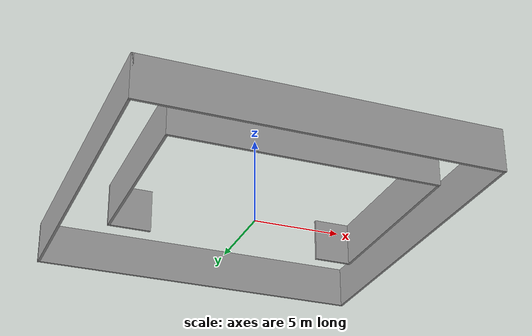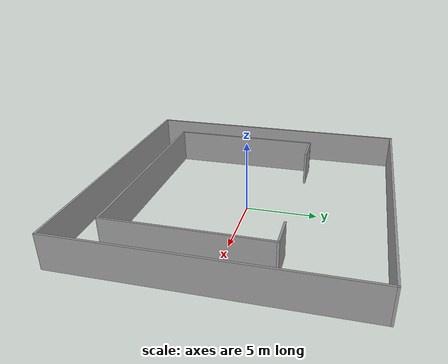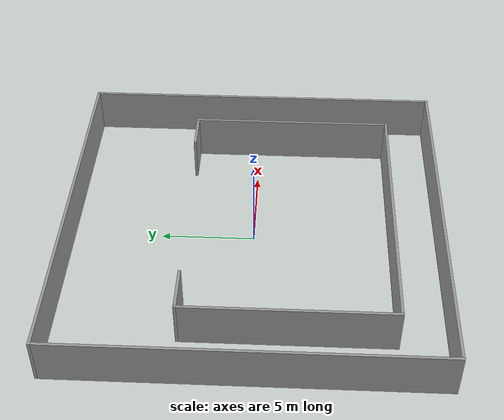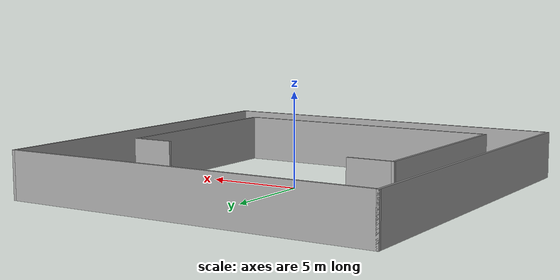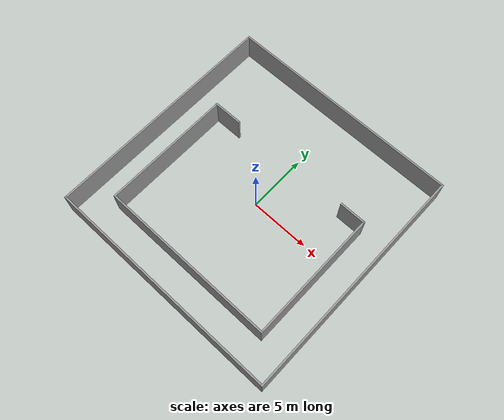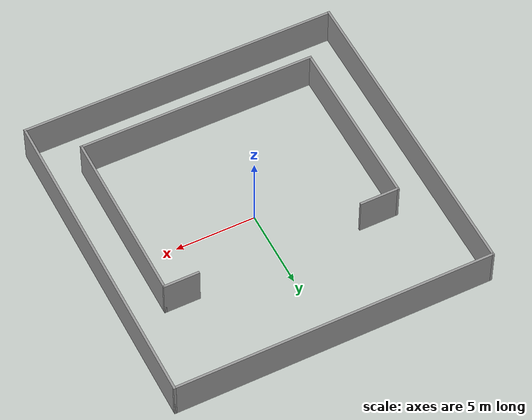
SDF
<?xml version='1.0'?>
<sdf version='1.6'>
  <model name='final'>
    <pose frame=''>-0.068 -0.029 0 0 -0 0</pose>
    <link name='Wall_13'>
      <collision name='Wall_13_Collision'>
        <geometry>
          <box>
            <size>20 0.15 2.5</size>
          </box>
        </geometry>
        <pose frame=''>0 0 1.25 0 -0 0</pose>
      </collision>
      <visual name='Wall_13_Visual'>
        <pose frame=''>0 0 1.25 0 -0 0</pose>
        <geometry>
          <box>
            <size>20 0.15 2.5</size>
          </box>
        </geometry>
        <material>
          <script>
            <uri>file://media/materials/scripts/gazebo.material</uri>
            <name>Gazebo/Grey</name>
          </script>
          <ambient>1 1 1 1</ambient>
        </material>
        <meta>
          <layer>0</layer>
        </meta>
      </visual>
      <pose frame=''>-9.925 0 0 0 -0 -1.5708</pose>
    </link>
    <link name='Wall_16'>
      <collision name='Wall_16_Collision'>
        <geometry>
          <box>
            <size>20 0.15 2.5</size>
          </box>
        </geometry>
        <pose frame=''>0 0 1.25 0 -0 0</pose>
      </collision>
      <visual name='Wall_16_Visual'>
        <pose frame=''>0 0 1.25 0 -0 0</pose>
        <geometry>
          <box>
            <size>20 0.15 2.5</size>
          </box>
        </geometry>
        <material>
          <script>
            <uri>file://media/materials/scripts/gazebo.material</uri>
            <name>Gazebo/Grey</name>
          </script>
          <ambient>1 1 1 1</ambient>
        </material>
        <meta>
          <layer>0</layer>
        </meta>
      </visual>
      <pose frame=''>-0 -9.925 0 0 -0 0</pose>
    </link>
    <link name='Wall_20'>
      <collision name='Wall_20_Collision'>
        <geometry>
          <box>
            <size>20 0.15 2.5</size>
          </box>
        </geometry>
        <pose frame=''>0 0 1.25 0 -0 0</pose>
      </collision>
      <visual name='Wall_20_Visual'>
        <pose frame=''>0 0 1.25 0 -0 0</pose>
        <geometry>
          <box>
            <size>20 0.15 2.5</size>
          </box>
        </geometry>
        <material>
          <script>
            <uri>file://media/materials/scripts/gazebo.material</uri>
            <name>Gazebo/Grey</name>
          </script>
          <ambient>1 1 1 1</ambient>
        </material>
        <meta>
          <layer>0</layer>
        </meta>
      </visual>
      <pose frame=''>9.925 0 0 0 -0 1.5708</pose>
    </link>
    <link name='Wall_22'>
      <collision name='Wall_22_Collision'>
        <geometry>
          <box>
            <size>20 0.15 2.5</size>
          </box>
        </geometry>
        <pose frame=''>0 0 1.25 0 -0 0</pose>
      </collision>
      <visual name='Wall_22_Visual'>
        <pose frame=''>0 0 1.25 0 -0 0</pose>
        <geometry>
          <box>
            <size>20 0.15 2.5</size>
          </box>
        </geometry>
        <material>
          <script>
            <uri>file://media/materials/scripts/gazebo.material</uri>
            <name>Gazebo/Grey</name>
          </script>
          <ambient>1 1 1 1</ambient>
        </material>
        <meta>
          <layer>0</layer>
        </meta>
      </visual>
      <pose frame=''>-0 9.925 0 0 -0 0</pose>
    </link>
    <link name='Wall_54'>
      <collision name='Wall_54_Collision'>
        <geometry>
          <box>
            <size>2.5 0.15 2.5</size>
          </box>
        </geometry>
        <pose frame=''>0 0 1.25 0 -0 0</pose>
      </collision>
      <visual name='Wall_54_Visual'>
        <pose frame=''>0 0 1.25 0 -0 0</pose>
        <geometry>
          <box>
            <size>2.5 0.15 2.5</size>
          </box>
        </geometry>
        <material>
          <script>
            <uri>file://media/materials/scripts/gazebo.material</uri>
            <name>Gazebo/Grey</name>
          </script>
          <ambient>1 1 1 1</ambient>
        </material>
        <meta>
          <layer>0</layer>
        </meta>
      </visual>
      <pose frame=''>-6.17026 3.48873 0 0 -0 3.14159</pose>
    </link>
    <link name='Wall_55'>
      <collision name='Wall_55_Collision'>
        <geometry>
          <box>
            <size>11 0.15 2.5</size>
          </box>
        </geometry>
        <pose frame=''>0 0 1.25 0 -0 0</pose>
      </collision>
      <visual name='Wall_55_Visual'>
        <pose frame=''>0 0 1.25 0 -0 0</pose>
        <geometry>
          <box>
            <size>11 0.15 2.5</size>
          </box>
        </geometry>
        <material>
          <script>
            <uri>file://media/materials/scripts/gazebo.material</uri>
            <name>Gazebo/Grey</name>
          </script>
          <ambient>1 1 1 1</ambient>
        </material>
        <meta>
          <layer>0</layer>
        </meta>
      </visual>
      <pose frame=''>-7.34526 -1.93626 0 0 -0 -1.5708</pose>
    </link>
    <link name='Wall_56'>
      <collision name='Wall_56_Collision'>
        <geometry>
          <box>
            <size>15 0.15 2.5</size>
          </box>
        </geometry>
        <pose frame=''>0 0 1.25 0 -0 0</pose>
      </collision>
      <visual name='Wall_56_Visual'>
        <pose frame=''>0 0 1.25 0 -0 0</pose>
        <geometry>
          <box>
            <size>15 0.15 2.5</size>
          </box>
        </geometry>
        <material>
          <script>
            <uri>file://media/materials/scripts/gazebo.material</uri>
            <name>Gazebo/Grey</name>
          </script>
          <ambient>1 1 1 1</ambient>
        </material>
        <meta>
          <layer>0</layer>
        </meta>
      </visual>
      <pose frame=''>0.079742 -7.36127 0 0 -0 0</pose>
    </link>
    <link name='Wall_57'>
      <collision name='Wall_57_Collision'>
        <geometry>
          <box>
            <size>11.1391 0.15 2.5</size>
          </box>
        </geometry>
        <pose frame=''>0 0 1.25 0 -0 0</pose>
      </collision>
      <visual name='Wall_57_Visual'>
        <pose frame=''>0 0 1.25 0 -0 0</pose>
        <geometry>
          <box>
            <size>11.1391 0.15 2.5</size>
          </box>
        </geometry>
        <material>
          <script>
            <uri>file://media/materials/scripts/gazebo.material</uri>
            <name>Gazebo/Grey</name>
          </script>
          <ambient>1 1 1 1</ambient>
        </material>
        <meta>
          <layer>0</layer>
        </meta>
      </visual>
      <pose frame=''>7.50474 -1.8667 0 0 -0 1.5708</pose>
    </link>
    <link name='Wall_62'>
      <collision name='Wall_62_Collision'>
        <geometry>
          <box>
            <size>2.25 0.15 2.5</size>
          </box>
        </geometry>
        <pose frame=''>0 0 1.25 0 -0 0</pose>
      </collision>
      <visual name='Wall_62_Visual'>
        <pose frame=''>0 0 1.25 0 -0 0</pose>
        <geometry>
          <box>
            <size>2.25 0.15 2.5</size>
          </box>
        </geometry>
        <material>
          <script>
            <uri>file://media/materials/scripts/gazebo.material</uri>
            <name>Gazebo/Grey</name>
          </script>
          <ambient>1 1 1 1</ambient>
        </material>
        <meta>
          <layer>0</layer>
        </meta>
      </visual>
      <pose frame=''>6.45474 3.62786 0 0 -0 3.14159</pose>
    </link>
    <static>1</static>
  </model>
</sdf>
